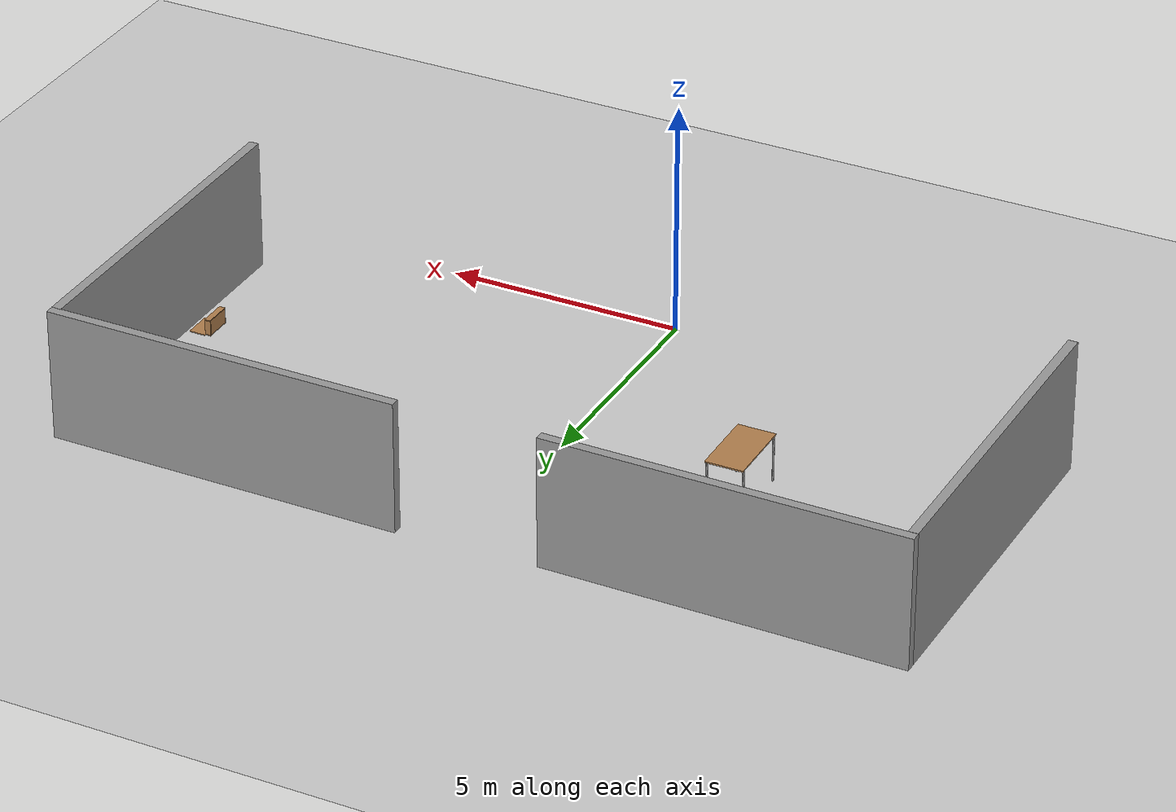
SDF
<sdf version="1.6">
 <world name="default">
  <model name="ground_plane">
   <static>1</static>
   <link name="link">
    <collision name="collision">
     <geometry><plane><normal>0 0 1</normal><size>100 100</size></plane></geometry>
     <surface>
      <contact><collide_bitmask>65535</collide_bitmask></contact>
      <friction><ode><mu>100</mu><mu2>50</mu2></ode></friction>
     </surface>
    </collision>
    <visual name="visual">
     <cast_shadows>0</cast_shadows>
     <geometry><plane><normal>0 0 1</normal><size>100 100</size></plane></geometry>
     <material>
      <script><uri>file://media/materials/scripts/gazebo.material</uri><name>Gazebo/Grey</name></script>
     </material>
    </visual>
   </link>
  </model>
  <model name="grey_wall_0_clone_clone">
   <static>1</static>
   <link name="link">
    <pose>0 0 1.4 0 -0 0</pose>
    <collision name="collision"><geometry><box><size>7.5 0.2 2.8</size></box></geometry></collision>
    <visual name="visual">
     <cast_shadows>0</cast_shadows>
     <geometry><box><size>7.5 0.2 2.8</size></box></geometry>
     <material>
      <script>
       <uri>model://grey_wall/materials/scripts</uri>
       <uri>model://grey_wall/materials/textures</uri>
       <name>vrc/grey_wall</name>
      </script>
     </material>
    </visual>
   </link>
   <pose>8.78335 5.21908 0 0 -0 1.57198</pose>
  </model>
  <model name="grey_wall_0_clone_0">
   <static>1</static>
   <link name="link">
    <pose>0 0 1.4 0 -0 0</pose>
    <collision name="collision"><geometry><box><size>7.5 0.2 2.8</size></box></geometry></collision>
    <visual name="visual">
     <cast_shadows>0</cast_shadows>
     <geometry><box><size>7.5 0.2 2.8</size></box></geometry>
     <material>
      <script>
       <uri>model://grey_wall/materials/scripts</uri>
       <uri>model://grey_wall/materials/textures</uri>
       <name>vrc/grey_wall</name>
      </script>
     </material>
    </visual>
   </link>
   <pose>5.12291 9.05525 0 0 -0 0</pose>
  </model>
  <model name="grey_wall_0_clone_0_clone">
   <static>1</static>
   <link name="link">
    <pose>0 0 1.4 0 -0 0</pose>
    <collision name="collision"><geometry><box><size>7.5 0.2 2.8</size></box></geometry></collision>
    <visual name="visual">
     <cast_shadows>0</cast_shadows>
     <geometry><box><size>7.5 0.2 2.8</size></box></geometry>
     <material>
      <script>
       <uri>model://grey_wall/materials/scripts</uri>
       <uri>model://grey_wall/materials/textures</uri>
       <name>vrc/grey_wall</name>
      </script>
     </material>
    </visual>
   </link>
   <pose>-5.26749 8.86909 0 0 -0 0</pose>
  </model>
  <model name="grey_wall_0_clone_clone_clone">
   <static>1</static>
   <link name="link">
    <pose>0 0 1.4 0 -0 0</pose>
    <collision name="collision"><geometry><box><size>7.5 0.2 2.8</size></box></geometry></collision>
    <visual name="visual">
     <cast_shadows>0</cast_shadows>
     <geometry><box><size>7.5 0.2 2.8</size></box></geometry>
     <material>
      <script>
       <uri>model://grey_wall/materials/scripts</uri>
       <uri>model://grey_wall/materials/textures</uri>
       <name>vrc/grey_wall</name>
      </script>
     </material>
    </visual>
   </link>
   <pose>-8.91028 5.01684 0 0 -0 1.57198</pose>
  </model>
  <model name="bookshelf">
   <static>1</static>
   <link name="link">
    <inertial><mass>1</mass></inertial>
    <collision name="back">
     <pose>0 0.005 0.6 0 -0 0</pose>
     <geometry><box><size>0.9 0.01 1.2</size></box></geometry>
    </collision>
    <visual name="visual1">
     <pose>0 0.005 0.6 0 -0 0</pose>
     <geometry><box><size>0.9 0.01 1.2</size></box></geometry>
     <material>
      <script><uri>file://media/materials/scripts/gazebo.material</uri><name>Gazebo/Wood</name></script>
     </material>
    </visual>
    <collision name="left_side">
     <pose>0.45 -0.195 0.6 0 -0 0</pose>
     <geometry><box><size>0.02 0.4 1.2</size></box></geometry>
    </collision>
    <visual name="visual2">
     <pose>0.45 -0.195 0.6 0 -0 0</pose>
     <geometry><box><size>0.02 0.4 1.2</size></box></geometry>
     <material>
      <script><uri>file://media/materials/scripts/gazebo.material</uri><name>Gazebo/Wood</name></script>
     </material>
    </visual>
    <collision name="right_side">
     <pose>-0.45 -0.195 0.6 0 -0 0</pose>
     <geometry><box><size>0.02 0.4 1.2</size></box></geometry>
    </collision>
    <visual name="visual3">
     <pose>-0.45 -0.195 0.6 0 -0 0</pose>
     <geometry><box><size>0.02 0.4 1.2</size></box></geometry>
     <material>
      <script><uri>file://media/materials/scripts/gazebo.material</uri><name>Gazebo/Wood</name></script>
     </material>
    </visual>
    <collision name="bottom">
     <pose>0 -0.195 0.03 0 -0 0</pose>
     <geometry><box><size>0.88 0.4 0.06</size></box></geometry>
    </collision>
    <visual name="visual4">
     <pose>0 -0.195 0.03 0 -0 0</pose>
     <geometry><box><size>0.88 0.4 0.06</size></box></geometry>
     <material>
      <script><uri>file://media/materials/scripts/gazebo.material</uri><name>Gazebo/Wood</name></script>
     </material>
    </visual>
    <collision name="top">
     <pose>0 -0.195 1.19 0 -0 0</pose>
     <geometry><box><size>0.88 0.4 0.02</size></box></geometry>
    </collision>
    <visual name="visual5">
     <pose>0 -0.195 1.19 0 -0 0</pose>
     <geometry><box><size>0.88 0.4 0.02</size></box></geometry>
     <material>
      <script><uri>file://media/materials/scripts/gazebo.material</uri><name>Gazebo/Wood</name></script>
     </material>
    </visual>
    <collision name="low_shelf">
     <pose>0 -0.195 0.43 0 -0 0</pose>
     <geometry><box><size>0.88 0.4 0.02</size></box></geometry>
    </collision>
    <visual name="visual6">
     <pose>0 -0.195 0.43 0 -0 0</pose>
     <geometry><box><size>0.88 0.4 0.02</size></box></geometry>
     <material>
      <script><uri>file://media/materials/scripts/gazebo.material</uri><name>Gazebo/Wood</name></script>
     </material>
    </visual>
    <collision name="high_shelf">
     <pose>0 -0.195 0.8 0 -0 0</pose>
     <geometry><box><size>0.88 0.4 0.02</size></box></geometry>
    </collision>
    <visual name="visual7">
     <pose>0 -0.195 0.8 0 -0 0</pose>
     <geometry><box><size>0.88 0.4 0.02</size></box></geometry>
     <material>
      <script><uri>file://media/materials/scripts/gazebo.material</uri><name>Gazebo/Wood</name></script>
     </material>
    </visual>
   </link>
   <pose>8.04991 8.59774 0 0 -0 0</pose>
  </model>
  <model name="ball_bearing">
   <link name="link">
    <pose>0 0 0.003 0 -0 0</pose>
    <inertial>
     <mass>0.0011</mass>
     <inertia>
      <ixx>3.96e-09</ixx>
      <ixy>0</ixy>
      <ixz>0</ixz>
      <iyy>3.96e-09</iyy>
      <iyz>0</iyz>
      <izz>3.96e-09</izz>
     </inertia>
    </inertial>
    <collision name="collision">
     <geometry><sphere><radius>0.003</radius></sphere></geometry>
     <surface>
      <contact>
       <poissons_ratio>0.305</poissons_ratio>
       <elastic_modulus>2e+11</elastic_modulus>
       <ode><kp>100000</kp><kd>100</kd><max_vel>100</max_vel><min_depth>0.001</min_depth></ode>
      </contact>
      <friction>
       <torsional>
        <coefficient>1</coefficient>
        <use_patch_radius>0</use_patch_radius>
        <surface_radius>0.01</surface_radius>
       </torsional>
      </friction>
     </surface>
    </collision>
    <visual name="visual">
     <geometry><sphere><radius>0.003</radius></sphere></geometry>
     <material>
      <script><uri>file://media/materials/scripts/gazebo.material</uri><name>Gazebo/Grey</name></script>
     </material>
    </visual>
    <velocity_decay><linear>0</linear><angular>0.005</angular></velocity_decay>
   </link>
   <pose>2.39822 4.43287 -0.001 0 -0 0</pose>
  </model>
  <model name="beer">
   <link name="link">
    <pose>0 0 0.115 0 -0 0</pose>
    <inertial>
     <mass>0.39</mass>
     <inertia><ixx>0.00058</ixx><ixy>0</ixy><ixz>0</ixz><iyy>0.00058</iyy><iyz>0</iyz><izz>0.00019</izz></inertia>
    </inertial>
    <collision name="collision">
     <geometry><cylinder><radius>0.055</radius><length>0.23</length></cylinder></geometry>
    </collision>
    <visual name="visual">
     <geometry><cylinder><radius>0.055</radius><length>0.23</length></cylinder></geometry>
     <material>
      <script>
       <uri>model://beer/materials/scripts</uri>
       <uri>model://beer/materials/textures</uri>
       <name>Beer/Diffuse</name>
      </script>
     </material>
    </visual>
   </link>
   <pose>-2.12348 5.82035 -2e-06 0 0 -0.000168</pose>
  </model>
  <model name="cabinet">
   <static>1</static>
   <link name="cabinet_bottom_plate">
    <inertial>
     <pose>0 0 -1 0 -0 0</pose>
     <inertia><ixx>2.05</ixx><ixy>0</ixy><ixz>0</ixz><iyy>2.05</iyy><iyz>0</iyz><izz>2.05</izz></inertia>
     <mass>25</mass>
    </inertial>
    <collision name="cabinet_bottom_plate_geom">
     <pose>0 0 0.01 0 -0 0</pose>
     <geometry><box><size>0.45 0.45 0.02</size></box></geometry>
    </collision>
    <visual name="cabinet_bottom_plate_geom_visual">
     <pose>0 0 0.01 0 -0 0</pose>
     <geometry><box><size>0.45 0.45 0.02</size></box></geometry>
     <material>
      <script><uri>file://media/materials/scripts/gazebo.material</uri><name>Gazebo/Wood</name></script>
     </material>
    </visual>
    <collision name="cabinet_bottom_plate_geom_cabinet_back_plate">
     <pose>0.235 0 0.51 0 -0 0</pose>
     <geometry><box><size>0.02 0.45 1.02</size></box></geometry>
    </collision>
    <visual name="cabinet_bottom_plate_geom_cabinet_back_plate_visual">
     <pose>0.235 0 0.51 0 -0 0</pose>
     <geometry><box><size>0.02 0.45 1.02</size></box></geometry>
     <material>
      <script><uri>file://media/materials/scripts/gazebo.material</uri><name>Gazebo/Wood</name></script>
     </material>
    </visual>
    <collision name="cabinet_bottom_plate_geom_cabinet_left_plate">
     <pose>0 0.235 0.51 0 -0 0</pose>
     <geometry><box><size>0.45 0.02 1.02</size></box></geometry>
    </collision>
    <visual name="cabinet_bottom_plate_geom_cabinet_left_plate_visual">
     <pose>0 0.235 0.51 0 -0 0</pose>
     <geometry><box><size>0.45 0.02 1.02</size></box></geometry>
     <material>
      <script><uri>file://media/materials/scripts/gazebo.material</uri><name>Gazebo/Wood</name></script>
     </material>
    </visual>
    <collision name="cabinet_bottom_plate_geom_cabinet_middle_plate">
     <pose>0 0 0.51 0 -0 0</pose>
     <geometry><box><size>0.45 0.45 0.02</size></box></geometry>
    </collision>
    <visual name="cabinet_bottom_plate_geom_cabinet_middle_plate_visual">
     <pose>0 0 0.51 0 -0 0</pose>
     <geometry><box><size>0.45 0.45 0.02</size></box></geometry>
     <material>
      <script><uri>file://media/materials/scripts/gazebo.material</uri><name>Gazebo/Wood</name></script>
     </material>
    </visual>
    <collision name="cabinet_bottom_plate_geom_cabinet_right_plate">
     <pose>0 -0.235 0.51 0 -0 0</pose>
     <geometry><box><size>0.45 0.02 1.02</size></box></geometry>
    </collision>
    <visual name="cabinet_bottom_plate_geom_cabinet_right_plate_visual">
     <pose>0 -0.235 0.51 0 -0 0</pose>
     <geometry><box><size>0.45 0.02 1.02</size></box></geometry>
     <material>
      <script><uri>file://media/materials/scripts/gazebo.material</uri><name>Gazebo/Wood</name></script>
     </material>
    </visual>
    <collision name="cabinet_bottom_plate_geom_cabinet_top_plate">
     <pose>0 0 1.01 0 -0 0</pose>
     <geometry><box><size>0.45 0.45 0.02</size></box></geometry>
    </collision>
    <visual name="cabinet_bottom_plate_geom_cabinet_top_plate_visual">
     <pose>0 0 1.01 0 -0 0</pose>
     <geometry><box><size>0.45 0.45 0.02</size></box></geometry>
     <material>
      <script><uri>file://media/materials/scripts/gazebo.material</uri><name>Gazebo/Wood</name></script>
     </material>
    </visual>
   </link>
   <pose>-2.27368 8.15612 0 0 -0 0</pose>
  </model>
  <model name="table">
   <static>1</static>
   <link name="link">
    <collision name="surface">
     <pose>0 0 1 0 -0 0</pose>
     <geometry><box><size>1.5 0.8 0.03</size></box></geometry>
     <surface><friction><ode><mu>0.6</mu><mu2>0.6</mu2></ode></friction></surface>
    </collision>
    <visual name="visual1">
     <pose>0 0 1 0 -0 0</pose>
     <geometry><box><size>1.5 0.8 0.03</size></box></geometry>
     <material>
      <script><uri>file://media/materials/scripts/gazebo.material</uri><name>Gazebo/Wood</name></script>
     </material>
    </visual>
    <collision name="front_left_leg">
     <pose>0.68 0.38 0.5 0 -0 0</pose>
     <geometry><cylinder><radius>0.02</radius><length>1</length></cylinder></geometry>
    </collision>
    <visual name="front_left_leg">
     <pose>0.68 0.38 0.5 0 -0 0</pose>
     <geometry><cylinder><radius>0.02</radius><length>1</length></cylinder></geometry>
     <material>
      <script><uri>file://media/materials/scripts/gazebo.material</uri><name>Gazebo/Grey</name></script>
     </material>
    </visual>
    <collision name="front_right_leg">
     <pose>0.68 -0.38 0.5 0 -0 0</pose>
     <geometry><cylinder><radius>0.02</radius><length>1</length></cylinder></geometry>
    </collision>
    <visual name="front_right_leg">
     <pose>0.68 -0.38 0.5 0 -0 0</pose>
     <geometry><cylinder><radius>0.02</radius><length>1</length></cylinder></geometry>
     <material>
      <script><uri>file://media/materials/scripts/gazebo.material</uri><name>Gazebo/Grey</name></script>
     </material>
    </visual>
    <collision name="back_right_leg">
     <pose>-0.68 -0.38 0.5 0 -0 0</pose>
     <geometry><cylinder><radius>0.02</radius><length>1</length></cylinder></geometry>
    </collision>
    <visual name="back_right_leg">
     <pose>-0.68 -0.38 0.5 0 -0 0</pose>
     <geometry><cylinder><radius>0.02</radius><length>1</length></cylinder></geometry>
     <material>
      <script><uri>file://media/materials/scripts/gazebo.material</uri><name>Gazebo/Grey</name></script>
     </material>
    </visual>
    <collision name="back_left_leg">
     <pose>-0.68 0.38 0.5 0 -0 0</pose>
     <geometry><cylinder><radius>0.02</radius><length>1</length></cylinder></geometry>
    </collision>
    <visual name="back_left_leg">
     <pose>-0.68 0.38 0.5 0 -0 0</pose>
     <geometry><cylinder><radius>0.02</radius><length>1</length></cylinder></geometry>
     <material>
      <script><uri>file://media/materials/scripts/gazebo.material</uri><name>Gazebo/Grey</name></script>
     </material>
    </visual>
   </link>
   <pose>-3.75951 4.94595 0 0 0 -1.55978</pose>
  </model>
  <model name="wooden_case">
   <link name="base">
    <pose>0 0 0.024 0 -0 0</pose>
    <inertial>
     <pose>-0.022184 0 0.171592 0 -0 0</pose>
     <mass>3.96264</mass>
     <inertia>
      <ixx>0.213536</ixx>
      <ixy>0</ixy>
      <ixz>0.000779377</ixz>
      <iyy>0.0708943</iyy>
      <iyz>0</iyz>
      <izz>0.154604</izz>
     </inertia>
    </inertial>
    <collision name="collision_back">
     <pose>-0.053975 0 0.1778 0 -0 0</pose>
     <geometry><box><size>0.01905 0.5461 0.3175</size></box></geometry>
     <surface>
      <contact>
       <poissons_ratio>0.347</poissons_ratio>
       <elastic_modulus>8.8e+09</elastic_modulus>
       <ode><kp>100000</kp><kd>100</kd><max_vel>100</max_vel><min_depth>0.001</min_depth></ode>
      </contact>
      <friction>
       <torsional>
        <coefficient>1</coefficient>
        <use_patch_radius>0</use_patch_radius>
        <surface_radius>0.01</surface_radius>
       </torsional>
      </friction>
     </surface>
    </collision>
    <visual name="visual_back">
     <pose>-0.053975 0 0.1778 0 -0 0</pose>
     <geometry><box><size>0.01905 0.5461 0.3175</size></box></geometry>
     <material>
      <script><uri>file://media/materials/scripts/gazebo.material</uri><name>Gazebo/Wood</name></script>
     </material>
    </visual>
    <collision name="collision_bottom">
     <pose>0 0 0.009525 0 -0 0</pose>
     <geometry><box><size>0.127 0.5842 0.01905</size></box></geometry>
     <surface>
      <contact>
       <poissons_ratio>0.347</poissons_ratio>
       <elastic_modulus>8.8e+09</elastic_modulus>
       <ode><kp>100000</kp><kd>100</kd><max_vel>100</max_vel><min_depth>0.001</min_depth></ode>
      </contact>
      <friction>
       <torsional>
        <coefficient>1</coefficient>
        <use_patch_radius>0</use_patch_radius>
        <surface_radius>0.01</surface_radius>
       </torsional>
      </friction>
     </surface>
    </collision>
    <visual name="visual_bottom">
     <pose>0 0 0.009525 0 -0 0</pose>
     <geometry><box><size>0.127 0.5842 0.01905</size></box></geometry>
     <material>
      <script><uri>file://media/materials/scripts/gazebo.material</uri><name>Gazebo/Wood</name></script>
     </material>
    </visual>
    <collision name="collision_top">
     <pose>0 0 0.346075 0 -0 0</pose>
     <geometry><box><size>0.127 0.5842 0.01905</size></box></geometry>
     <surface>
      <contact>
       <poissons_ratio>0.347</poissons_ratio>
       <elastic_modulus>8.8e+09</elastic_modulus>
       <ode><kp>100000</kp><kd>100</kd><max_vel>100</max_vel><min_depth>0.001</min_depth></ode>
      </contact>
      <friction>
       <torsional>
        <coefficient>1</coefficient>
        <use_patch_radius>0</use_patch_radius>
        <surface_radius>0.01</surface_radius>
       </torsional>
      </friction>
     </surface>
    </collision>
    <visual name="visual_top">
     <pose>0 0 0.346075 0 -0 0</pose>
     <geometry><box><size>0.127 0.5842 0.01905</size></box></geometry>
     <material>
      <script><uri>file://media/materials/scripts/gazebo.material</uri><name>Gazebo/Wood</name></script>
     </material>
    </visual>
    <collision name="collision_left">
     <pose>0 -0.282575 0.1778 0 -0 0</pose>
     <geometry><box><size>0.127 0.01905 0.3175</size></box></geometry>
     <surface>
      <contact>
       <poissons_ratio>0.347</poissons_ratio>
       <elastic_modulus>8.8e+09</elastic_modulus>
       <ode><kp>100000</kp><kd>100</kd><max_vel>100</max_vel><min_depth>0.001</min_depth></ode>
      </contact>
      <friction>
       <torsional>
        <coefficient>1</coefficient>
        <use_patch_radius>0</use_patch_radius>
        <surface_radius>0.01</surface_radius>
       </torsional>
      </friction>
     </surface>
    </collision>
    <visual name="visual_left">
     <pose>0 -0.282575 0.1778 0 -0 0</pose>
     <geometry><box><size>0.127 0.01905 0.3175</size></box></geometry>
     <material>
      <script><uri>file://media/materials/scripts/gazebo.material</uri><name>Gazebo/Wood</name></script>
     </material>
    </visual>
    <collision name="collision_right">
     <pose>0 0.282575 0.1778 0 -0 0</pose>
     <geometry><box><size>0.127 0.01905 0.3175</size></box></geometry>
     <surface>
      <contact>
       <poissons_ratio>0.347</poissons_ratio>
       <elastic_modulus>8.8e+09</elastic_modulus>
       <ode><kp>100000</kp><kd>100</kd><max_vel>100</max_vel><min_depth>0.001</min_depth></ode>
      </contact>
      <friction>
       <torsional>
        <coefficient>1</coefficient>
        <use_patch_radius>0</use_patch_radius>
        <surface_radius>0.01</surface_radius>
       </torsional>
      </friction>
     </surface>
    </collision>
    <visual name="visual_right">
     <pose>0 0.282575 0.1778 0 -0 0</pose>
     <geometry><box><size>0.127 0.01905 0.3175</size></box></geometry>
     <material>
      <script><uri>file://media/materials/scripts/gazebo.material</uri><name>Gazebo/Wood</name></script>
     </material>
    </visual>
    <collision name="collision_block_left">
     <pose>0.0095 -0.2151 -0.012 0 -0 0</pose>
     <geometry><box><size>0.108 0.05 0.024</size></box></geometry>
     <surface>
      <contact>
       <poissons_ratio>0.347</poissons_ratio>
       <elastic_modulus>8.8e+09</elastic_modulus>
       <ode><kp>100000</kp><kd>100</kd><max_vel>100</max_vel><min_depth>0.001</min_depth></ode>
      </contact>
      <friction>
       <torsional>
        <coefficient>1</coefficient>
        <use_patch_radius>0</use_patch_radius>
        <surface_radius>0.01</surface_radius>
       </torsional>
      </friction>
     </surface>
    </collision>
    <visual name="visual_block_left">
     <pose>0.0095 -0.2151 -0.012 0 -0 0</pose>
     <geometry><box><size>0.108 0.05 0.024</size></box></geometry>
     <material>
      <script><uri>file://media/materials/scripts/gazebo.material</uri><name>Gazebo/Wood</name></script>
     </material>
    </visual>
    <collision name="collision_block_right">
     <pose>0.0095 0.2151 -0.012 0 -0 0</pose>
     <geometry><box><size>0.108 0.05 0.024</size></box></geometry>
     <surface>
      <contact>
       <poissons_ratio>0.347</poissons_ratio>
       <elastic_modulus>8.8e+09</elastic_modulus>
       <ode><kp>100000</kp><kd>100</kd><max_vel>100</max_vel><min_depth>0.001</min_depth></ode>
      </contact>
      <friction>
       <torsional>
        <coefficient>1</coefficient>
        <use_patch_radius>0</use_patch_radius>
        <surface_radius>0.01</surface_radius>
       </torsional>
      </friction>
     </surface>
    </collision>
    <visual name="visual_block_right">
     <pose>0.0095 0.2151 -0.012 0 -0 0</pose>
     <geometry><box><size>0.108 0.05 0.024</size></box></geometry>
     <material>
      <script><uri>file://media/materials/scripts/gazebo.material</uri><name>Gazebo/Wood</name></script>
     </material>
    </visual>
   </link>
   <link name="lid">
    <pose>0.243775 0 0.009525 0 -0 0</pose>
    <inertial>
     <mass>1.97874</mass>
     <inertia>
      <ixx>0.0563367</ixx>
      <ixy>0</ixy>
      <ixz>0</ixz>
      <iyy>0.020911</iyy>
      <iyz>0</iyz>
      <izz>0.0771281</izz>
     </inertia>
    </inertial>
    <collision name="collision">
     <geometry><box><size>0.3556 0.5842 0.01905</size></box></geometry>
     <surface>
      <contact>
       <poissons_ratio>0.347</poissons_ratio>
       <elastic_modulus>8.8e+09</elastic_modulus>
       <ode><kp>100000</kp><kd>100</kd><max_vel>100</max_vel><min_depth>0.001</min_depth></ode>
      </contact>
      <friction>
       <torsional>
        <coefficient>1</coefficient>
        <use_patch_radius>0</use_patch_radius>
        <surface_radius>0.01</surface_radius>
       </torsional>
      </friction>
     </surface>
    </collision>
    <visual name="visual">
     <geometry><box><size>0.3556 0.5842 0.01905</size></box></geometry>
     <material>
      <script><uri>file://media/materials/scripts/gazebo.material</uri><name>Gazebo/Wood</name></script>
     </material>
    </visual>
    <visual name="tee_nut_1">
     <pose>0.122 -0.216 0 0 -0 0</pose>
     <geometry><cylinder><radius>0.00635</radius><length>0.0192405</length></cylinder></geometry>
     <material>
      <script><uri>file://media/materials/scripts/gazebo.material</uri><name>Gazebo/Grey</name></script>
     </material>
    </visual>
    <visual name="tee_nut_2">
     <pose>0.122 -0.088 0 0 -0 0</pose>
     <geometry><cylinder><radius>0.00635</radius><length>0.0192405</length></cylinder></geometry>
     <material>
      <script><uri>file://media/materials/scripts/gazebo.material</uri><name>Gazebo/Grey</name></script>
     </material>
    </visual>
    <visual name="tee_nut_3">
     <pose>0.122 0.088 0 0 -0 0</pose>
     <geometry><cylinder><radius>0.00635</radius><length>0.0192405</length></cylinder></geometry>
     <material>
      <script><uri>file://media/materials/scripts/gazebo.material</uri><name>Gazebo/Grey</name></script>
     </material>
    </visual>
    <visual name="tee_nut_4">
     <pose>0.122 0.216 0 0 -0 0</pose>
     <geometry><cylinder><radius>0.00635</radius><length>0.0192405</length></cylinder></geometry>
     <material>
      <script><uri>file://media/materials/scripts/gazebo.material</uri><name>Gazebo/Grey</name></script>
     </material>
    </visual>
   </link>
   <joint name="lid_hinge" type="revolute">
    <pose>-0.1778 0 0.01905 0 -0 0</pose>
    <parent>base</parent>
    <child>lid</child>
    <axis>
     <xyz>0 1 0</xyz>
     <limit><upper>0.523599</upper><lower>-1.5708</lower></limit>
     <use_parent_model_frame>0</use_parent_model_frame>
     <dynamics><spring_reference>0</spring_reference><spring_stiffness>0</spring_stiffness></dynamics>
    </axis>
   </joint>
   <pose>8.19321 4.20428 -0.001057 0 -0.000429 -1e-06</pose>
  </model>
 </world>
</sdf>
